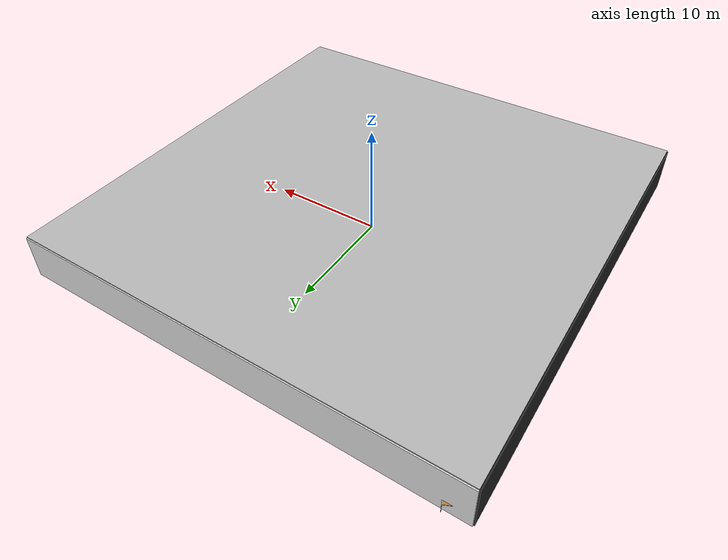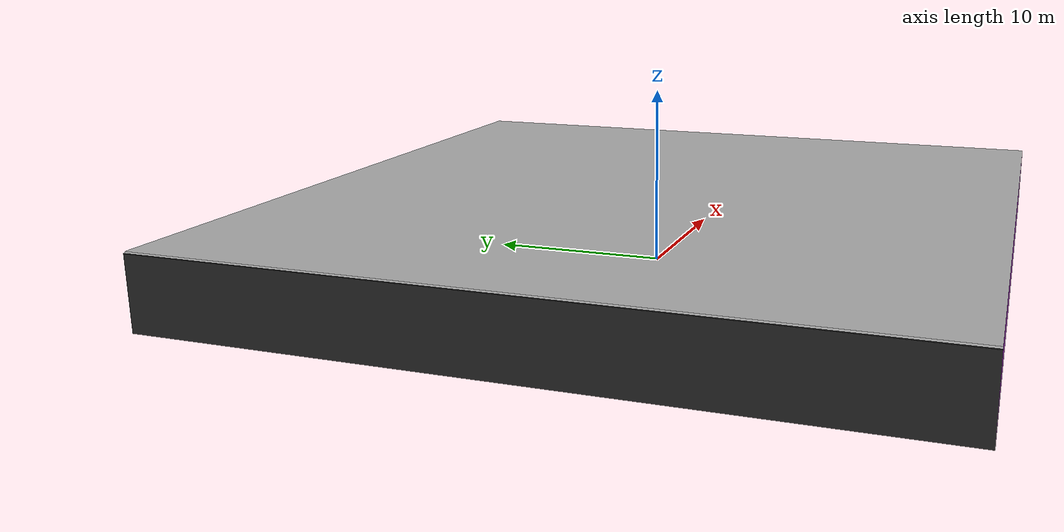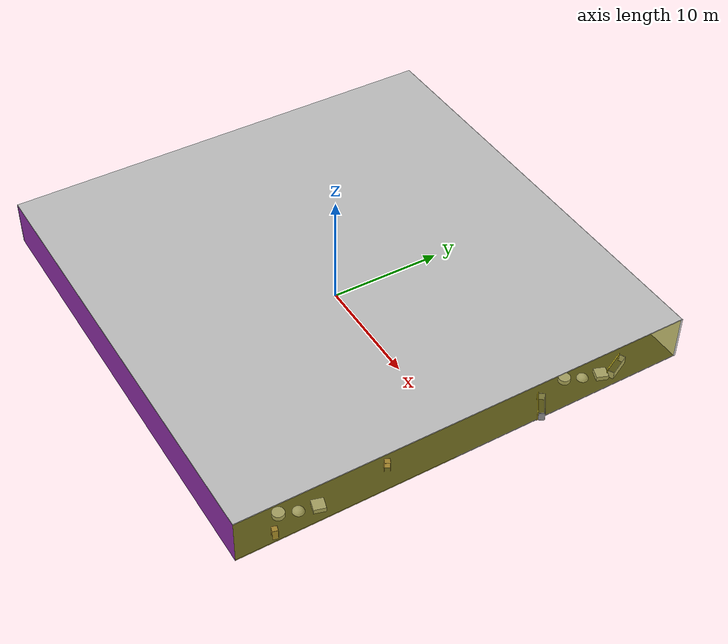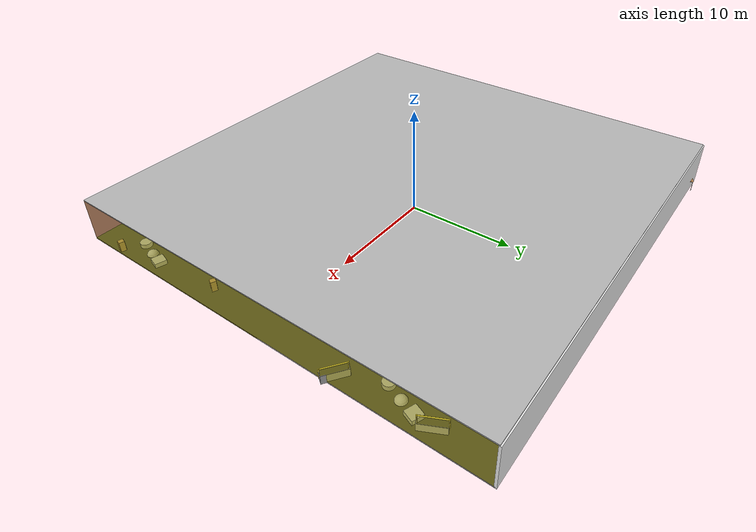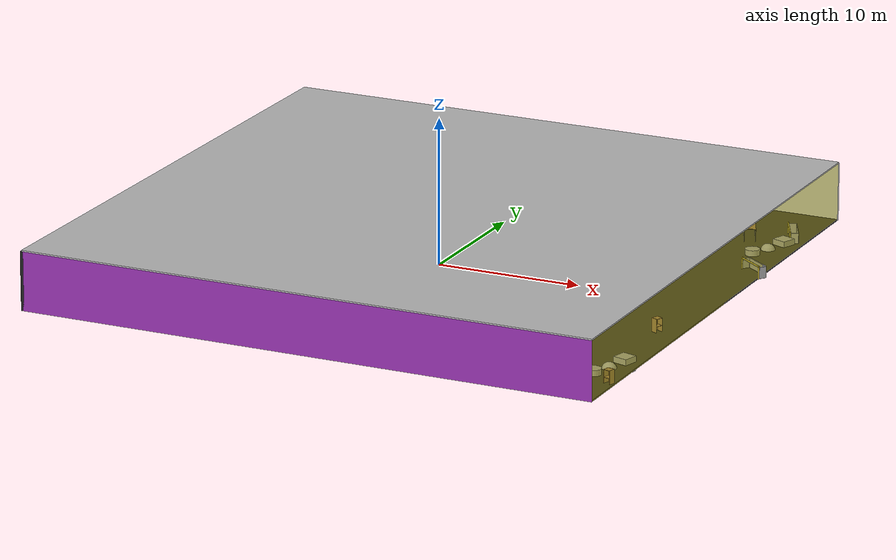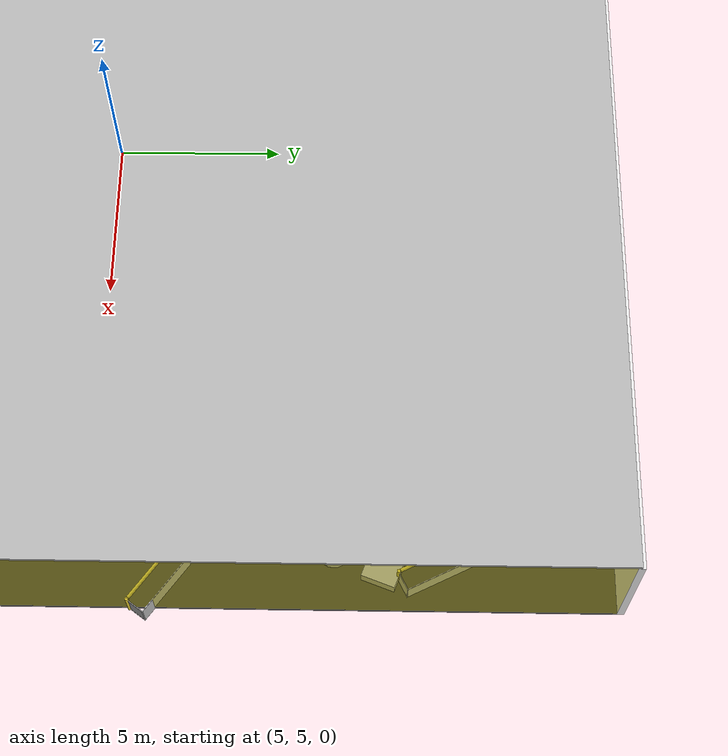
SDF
<sdf version="1.4">
 <world name="default">
  <physics type="ode">
   <max_step_size>0.001</max_step_size>
   <real_time_factor>1</real_time_factor>
   <real_time_update_rate>1000</real_time_update_rate>
   <gravity>0 0 -9.8</gravity>
  </physics>
  <scene><ambient>0.4 0.4 0.4 1</ambient><background>0.7 0.7 0.7 1</background><shadows>1</shadows></scene>
  <model name="Surrounding">
   <static>1</static>
   <link name="Ceiling">
    <collision name="Ceiling_Collision"><geometry><box><size>40 40 0.1</size></box></geometry></collision>
    <visual name="Ceiling_Visual">
     <geometry><box><size>40 40 0.1</size></box></geometry>
     <material>
      <script><uri>file://media/materials/scripts/gazebo.material</uri><name>Gazebo/LightOn</name></script>
     </material>
    </visual>
    <pose>0 0 4.05 0 0 0</pose>
   </link>
   <link name="Wall_South">
    <collision name="Wall_South_Collision">
     <geometry><box><size>40 0 4</size></box></geometry>
     <pose>0 0 2 0 -0 0</pose>
    </collision>
    <visual name="Wall_South_Visual">
     <pose>0 0 2 0 -0 0</pose>
     <geometry><box><size>40 0 4</size></box></geometry>
     <material>
      <script><uri>file://media/materials/scripts/gazebo.material</uri><name>Gazebo/PurpleGlow</name></script>
     </material>
    </visual>
    <velocity_decay><linear>0</linear><angular>0</angular></velocity_decay>
    <pose>0 -20 0 0 -0 0</pose>
   </link>
   <link name="Wall_East">
    <collision name="Wall_21_Collision">
     <geometry><box><size>40 0 4</size></box></geometry>
     <pose>0 0 2 0 -0 0</pose>
    </collision>
    <visual name="Wall_21_Visual">
     <pose>0 0 2 0 -0 0</pose>
     <geometry><box><size>40 0 4</size></box></geometry>
     <material>
      <script>
       <uri>file://media/materials/scripts/gazebo.material</uri>
       <name>Gazebo/YellowTransparent</name>
      </script>
     </material>
    </visual>
    <velocity_decay><linear>0</linear><angular>0</angular></velocity_decay>
    <pose>20 0 0 0 -0 1.5708</pose>
   </link>
   <link name="Wall_North">
    <collision name="Wall_22_Collision">
     <geometry><box><size>40 0.2 4</size></box></geometry>
     <pose>0 0 2 0 -0 0</pose>
    </collision>
    <visual name="Wall_22_Visual">
     <pose>0 0 2 0 -0 0</pose>
     <geometry><box><size>40 0.2 4</size></box></geometry>
     <material>
      <script><uri>file://media/materials/scripts/gazebo.material</uri><name>Gazebo/WhiteGlow</name></script>
     </material>
    </visual>
    <velocity_decay><linear>0</linear><angular>0</angular></velocity_decay>
    <pose>0 20 0 0 -0 0</pose>
   </link>
   <link name="Wall_West">
    <collision name="Wall_23_Collision">
     <geometry><box><size>40 0.2 4</size></box></geometry>
     <pose>0 0 2 0 -0 0</pose>
    </collision>
    <visual name="Wall_23_Visual">
     <pose>0 0 2 0 -0 0</pose>
     <geometry><box><size>40 0.2 4</size></box></geometry>
     <material>
      <script><uri>file://media/materials/scripts/gazebo.material</uri><name>Gazebo/FlatBlack</name></script>
     </material>
    </visual>
    <velocity_decay><linear>0</linear><angular>0</angular></velocity_decay>
    <pose>-20 0 0 0 0 -1.5708</pose>
   </link>
   <link name="Ground_link">
    <collision name="collision">
     <pose>0 0 .05 0 -0 0</pose>
     <geometry><box><size>40 40 0.1</size></box></geometry>
    </collision>
    <visual name="visual">
     <pose>0 0 .05 0 -0 0</pose>
     <geometry><box><size>40 40 0.1</size></box></geometry>
     <material>
      <script><uri>file://media/materials/scripts/gazebo.material</uri><name>Gazebo/FlatBlack</name></script>
     </material>
    </visual>
   </link>
   <static>1</static>
  </model>
  <spherical_coordinates>
   <surface_model>EARTH_WGS84</surface_model>
   <latitude_deg>0</latitude_deg>
   <longitude_deg>0</longitude_deg>
   <elevation>0</elevation>
   <heading_deg>0</heading_deg>
  </spherical_coordinates>
  <light name="lightball_0" type="diffuse">
   <diffuse>0.8 0.8 0.8 1</diffuse>
   <specular>0.2 0.2 0.2 1</specular>
   <attenuation>
    <range>100</range>
    <constant>0.7</constant>
    <linear>0.01</linear>
    <quadratic>0.001</quadratic>
   </attenuation>
   <direction>-0.5 0.1 -0.9</direction>
   <pose>16.653740459 -18.8333103449 1.40176997761 0 0 0</pose>
  </light>
  <light name="lightball_1" type="diffuse">
   <diffuse>0.8 0.8 0.8 1</diffuse>
   <specular>0.2 0.2 0.2 1</specular>
   <attenuation>
    <range>100</range>
    <constant>0.7</constant>
    <linear>0.01</linear>
    <quadratic>0.001</quadratic>
   </attenuation>
   <direction>-0.5 0.1 -0.9</direction>
   <pose>-19.3544927912 -9.27481974929 0.92242195323 0 0 0</pose>
  </light>
  <light name="lightball_2" type="diffuse">
   <diffuse>0.8 0.8 0.8 1</diffuse>
   <specular>0.2 0.2 0.2 1</specular>
   <attenuation>
    <range>100</range>
    <constant>0.7</constant>
    <linear>0.01</linear>
    <quadratic>0.001</quadratic>
   </attenuation>
   <direction>-0.5 0.1 -0.9</direction>
   <pose>-7.89734342217 18.6672067884 1.34808365065 0 0 0</pose>
  </light>
  <light name="lightball_3" type="diffuse">
   <diffuse>0.8 0.8 0.8 1</diffuse>
   <specular>0.2 0.2 0.2 1</specular>
   <attenuation>
    <range>100</range>
    <constant>0.7</constant>
    <linear>0.01</linear>
    <quadratic>0.001</quadratic>
   </attenuation>
   <direction>-0.5 0.1 -0.9</direction>
   <pose>-16.1527318909 -10.2690832323 2.27273684176 0 0 0</pose>
  </light>
  <light name="lightball_4" type="diffuse">
   <diffuse>0.8 0.8 0.8 1</diffuse>
   <specular>0.2 0.2 0.2 1</specular>
   <attenuation>
    <range>100</range>
    <constant>0.7</constant>
    <linear>0.01</linear>
    <quadratic>0.001</quadratic>
   </attenuation>
   <direction>-0.5 0.1 -0.9</direction>
   <pose>12.9182635345 -0.435605254172 2.29087408469 0 0 0</pose>
  </light>
  <light name="lightball_5" type="diffuse">
   <diffuse>0.8 0.8 0.8 1</diffuse>
   <specular>0.2 0.2 0.2 1</specular>
   <attenuation>
    <range>100</range>
    <constant>0.7</constant>
    <linear>0.01</linear>
    <quadratic>0.001</quadratic>
   </attenuation>
   <direction>-0.5 0.1 -0.9</direction>
   <pose>-3.55499296508 -2.25145157574 3.26230845346 0 0 0</pose>
  </light>
  <light name="lightball_6" type="diffuse">
   <diffuse>0.8 0.8 0.8 1</diffuse>
   <specular>0.2 0.2 0.2 1</specular>
   <attenuation>
    <range>100</range>
    <constant>0.7</constant>
    <linear>0.01</linear>
    <quadratic>0.001</quadratic>
   </attenuation>
   <direction>-0.5 0.1 -0.9</direction>
   <pose>15.3550148925 8.65528143123 2.46871881614 0 0 0</pose>
  </light>
  <include>
   <uri>model://construction_cone</uri>
   <pose>-17.4015797901 9.68293926827 0 0 0 3.11391428756</pose>
  </include>
  <include><uri>model://table</uri><pose>-18.0319135364 19.5371846507 0 0 0 1.99001848298</pose></include>
  <include><uri>model://cabinet</uri><pose>-14.4496539364 -14.0322142475 0 0 0 2.79714585365</pose></include>
  <include><uri>model://table</uri><pose>-15.1381121478 -10.5260306106 0 0 0 2.74685311131</pose></include>
  <include>
   <uri>model://textured_shapes</uri>
   <pose>-15.3871589678 0.437236915069 0 0 0 0.735297833513</pose>
  </include>
  <include>
   <uri>model://construction_cone</uri>
   <pose>-10.3152629295 -1.96418553949 0 0 0 0.737214014679</pose>
  </include>
  <include><uri>model://table</uri><pose>-11.0426168108 1.25563395626 0 0 0 1.11287237737</pose></include>
  <include><uri>model://table</uri><pose>-11.8912035427 8.36644088633 0 0 0 1.43172013293</pose></include>
  <include><uri>model://cabinet</uri><pose>-7.45158416923 2.57951414028 0 0 0 2.69162805</pose></include>
  <include>
   <uri>model://construction_cone</uri>
   <pose>-8.40402989755 16.5744958056 0 0 0 0.664037918166</pose>
  </include>
  <include>
   <uri>model://construction_cone</uri>
   <pose>-8.91043237881 18.318967475 0 0 0 0.310511101618</pose>
  </include>
  <include><uri>model://cabinet</uri><pose>-5.74586496587 -16.7713666358 0 0 0 2.56520035928</pose></include>
  <include>
   <uri>model://textured_shapes</uri>
   <pose>-2.20925457726 2.47054243141 0 0 0 1.92638663148</pose>
  </include>
  <include>
   <uri>model://construction_cone</uri>
   <pose>-2.7829270819 15.7487844287 0 0 0 0.0602497050983</pose>
  </include>
  <include>
   <uri>model://robocup_3Dsim_goal</uri>
   <pose>0.436614440085 9.91507274815 0 0 0 1.50093596826</pose>
  </include>
  <include><uri>model://table</uri><pose>2.93686341517 -8.59640082106 0 0 0 1.41395957777</pose></include>
  <include><uri>model://cabinet</uri><pose>6.82224657953 -4.37331113113 0 0 0 2.50394235126</pose></include>
  <include><uri>model://cabinet</uri><pose>7.53584640895 9.56630772813 0 0 0 2.51005064862</pose></include>
  <include><uri>model://cabinet</uri><pose>8.45804052865 -8.18083830363 0 0 0 2.63248779684</pose></include>
  <include><uri>model://cabinet</uri><pose>8.55145245983 2.59728638218 0 0 0 0.364718812264</pose></include>
  <include>
   <uri>model://robocup_3Dsim_goal</uri>
   <pose>12.393364481 11.9089392204 0 0 0 2.19798596461</pose>
  </include>
  <include>
   <uri>model://construction_cone</uri>
   <pose>12.1781871183 19.0210816561 0 0 0 2.02410969522</pose>
  </include>
  <include><uri>model://table</uri><pose>16.3071218776 13.5498236487 0 0 0 1.99600403477</pose></include>
  <include><uri>model://cabinet</uri><pose>19.6262075808 -16.6102172295 0 0 0 1.29741527923</pose></include>
  <include>
   <uri>model://textured_shapes</uri>
   <pose>18.4992719739 -14.0270900827 0 0 0 2.86172596206</pose>
  </include>
  <include><uri>model://cabinet</uri><pose>18.370361127 -6.34691712209 0 0 0 2.68428782915</pose></include>
  <include>
   <uri>model://robocup_3Dsim_goal</uri>
   <pose>19.165338253 6.93423331442 0 0 0 0.938606286938</pose>
  </include>
  <include>
   <uri>model://textured_shapes</uri>
   <pose>18.2966212683 11.9911347653 0 0 0 2.78350093755</pose>
  </include>
  <include>
   <uri>model://robocup_3Dsim_goal</uri>
   <pose>18.6444252151 14.7477145807 0 0 0 0.45649039246</pose>
  </include>
 </world>
</sdf>

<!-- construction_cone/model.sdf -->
<sdf version="1.5">
  <model name="Construction Cone">
    <link name="link">
      <collision name="collision">
        <geometry>
          <mesh>
            <scale>10 10 10</scale>
            <uri>file://isr-testbed/construction_cone/meshes/construction_cone.dae</uri>
          </mesh>
        </geometry>
      </collision>
      <visual name="visual">
        <geometry>
          <mesh>
            <scale>10 10 10</scale>
            <uri>file://isr-testbed/construction_cone/meshes/construction_cone.dae</uri>
          </mesh>
        </geometry>
      </visual>
    </link>
  </model>
</sdf>

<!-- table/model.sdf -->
<sdf version="1.5">
  <model name="table">
    <static>true</static>
    <link name="link">
      <collision name="surface">
        <pose>0 0 1.0 0 0 0</pose>
        <geometry>
          <box>
            <size>1.5 0.8 0.03</size>
          </box>
        </geometry>
        <surface>
          <friction>
            <ode>
              <mu>0.6</mu>
              <mu2>0.6</mu2>
            </ode>
          </friction>
        </surface>
      </collision>
      <visual name="visual1">
        <pose>0 0 1.0 0 0 0</pose>
        <geometry>
          <box>
            <size>1.5 0.8 0.03</size>
          </box>
        </geometry>
        <material>
          <script>
            <uri>model://media/materials/scripts/gazebo.material</uri>
            <name>Gazebo/Wood</name>
          </script>
        </material>
      </visual>
      <collision name="front_left_leg">
        <pose>0.68 0.38 0.5 0 0 0</pose>
        <geometry>
          <cylinder>
            <radius>0.02</radius>
            <length>1.0</length>
          </cylinder>
        </geometry>
      </collision>
      <visual name="front_left_leg">
        <pose>0.68 0.38 0.5 0 0 0</pose>
        <geometry>
          <cylinder>
            <radius>0.02</radius>
            <length>1.0</length>
          </cylinder>
        </geometry>
        <material>
          <script>
            <uri>model://media/materials/scripts/gazebo.material</uri>
            <name>Gazebo/Grey</name>
          </script>
        </material>
      </visual>
      <collision name="front_right_leg">
        <pose>0.68 -0.38 0.5 0 0 0</pose>
        <geometry>
          <cylinder>
            <radius>0.02</radius>
            <length>1.0</length>
          </cylinder>
        </geometry>
      </collision>
      <visual name="front_right_leg">
        <pose>0.68 -0.38 0.5 0 0 0</pose>
        <geometry>
          <cylinder>
            <radius>0.02</radius>
            <length>1.0</length>
          </cylinder>
        </geometry>
        <material>
          <script>
            <uri>model://media/materials/scripts/gazebo.material</uri>
            <name>Gazebo/Grey</name>
          </script>
        </material>
      </visual>
      <collision name="back_right_leg">
        <pose>-0.68 -0.38 0.5 0 0 0</pose>
        <geometry>
          <cylinder>
            <radius>0.02</radius>
            <length>1.0</length>
          </cylinder>
        </geometry>
      </collision>
      <visual name="back_right_leg">
        <pose>-0.68 -0.38 0.5 0 0 0</pose>
        <geometry>
          <cylinder>
            <radius>0.02</radius>
            <length>1.0</length>
          </cylinder>
        </geometry>
        <material>
          <script>
            <uri>model://media/materials/scripts/gazebo.material</uri>
            <name>Gazebo/Grey</name>
          </script>
        </material>
      </visual>
      <collision name="back_left_leg">
        <pose>-0.68 0.38 0.5 0 0 0</pose>
        <geometry>
          <cylinder>
            <radius>0.02</radius>
            <length>1.0</length>
          </cylinder>
        </geometry>
      </collision>
      <visual name="back_left_leg">
        <pose>-0.68 0.38 0.5 0 0 0</pose>
        <geometry>
          <cylinder>
            <radius>0.02</radius>
            <length>1.0</length>
          </cylinder>
        </geometry>
        <material>
          <script>
            <uri>model://media/materials/scripts/gazebo.material</uri>
            <name>Gazebo/Grey</name>
          </script>
        </material>
      </visual>
    </link>
  </model>
</sdf>

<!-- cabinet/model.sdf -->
<sdf version="1.5">
  <model name="cabinet">
    <static>true</static>
    <link name="cabinet_bottom_plate">
      <inertial>
        <pose>0 0 -1 0 0 0</pose>
        <inertia>
          <ixx>2.050000</ixx>
          <ixy>0</ixy>
          <ixz>0</ixz>
          <iyy>2.050000</iyy>
          <iyz>0</iyz>
          <izz>2.050000</izz>
        </inertia>
        <mass>25.000000</mass>
      </inertial>
      <collision name="cabinet_bottom_plate_geom">
        <pose>0 0 0.010000 0 0 0</pose>
        <geometry>
          <box>
            <size>0.450000 0.450000 0.020000</size>
          </box>
        </geometry>
      </collision>
      <visual name="cabinet_bottom_plate_geom_visual">
        <pose>0 0 0.010000 0 0 0</pose>
        <geometry>
          <box>
            <size>0.450000 0.450000 0.020000</size>
          </box>
        </geometry>
        <material>
          <script>
            <uri>model://media/materials/scripts/gazebo.material</uri>
            <name>Gazebo/Wood</name>
          </script>
        </material>
      </visual>
      <collision name="cabinet_bottom_plate_geom_cabinet_back_plate">
        <pose>0.235000 0 0.510000 0 0 0</pose>
        <geometry>
          <box>
            <size>0.020000 0.450000 1.020000</size>
          </box>
        </geometry>
      </collision>
      <visual name="cabinet_bottom_plate_geom_cabinet_back_plate_visual">
        <pose>0.235000 0 0.510000 0 0 0</pose>
        <geometry>
          <box>
            <size>0.020000 0.450000 1.020000</size>
          </box>
        </geometry>
        <material>
          <script>
            <uri>model://media/materials/scripts/gazebo.material</uri>
            <name>Gazebo/Wood</name>
          </script>
        </material>
      </visual>
      <collision name="cabinet_bottom_plate_geom_cabinet_left_plate">
        <pose>0 0.235000 0.510000 0 0 0</pose>
        <geometry>
          <box>
            <size>0.450000 0.020000 1.020000</size>
          </box>
        </geometry>
      </collision>
      <visual name="cabinet_bottom_plate_geom_cabinet_left_plate_visual">
        <pose>0 0.235000 0.510000 0 0 0</pose>
        <geometry>
          <box>
            <size>0.450000 0.020000 1.020000</size>
          </box>
        </geometry>
        <material>
          <script>
            <uri>model://media/materials/scripts/gazebo.material</uri>
            <name>Gazebo/Wood</name>
          </script>
        </material>
      </visual>
      <collision name="cabinet_bottom_plate_geom_cabinet_middle_plate">
        <pose>0 0 0.510000 0 0 0</pose>
        <geometry>
          <box>
            <size>0.450000 0.450000 0.020000</size>
          </box>
        </geometry>
      </collision>
      <visual name="cabinet_bottom_plate_geom_cabinet_middle_plate_visual">
        <pose>0 0 0.510000 0 0 0</pose>
        <geometry>
          <box>
            <size>0.450000 0.450000 0.020000</size>
          </box>
        </geometry>
        <material>
          <script>
            <uri>model://media/materials/scripts/gazebo.material</uri>
            <name>Gazebo/Wood</name>
          </script>
        </material>
      </visual>
      <collision name="cabinet_bottom_plate_geom_cabinet_right_plate">
        <pose>0 -0.235000 0.510000 0 0 0</pose>
        <geometry>
          <box>
            <size>0.450000 0.020000 1.020000</size>
          </box>
        </geometry>
      </collision>
      <visual name="cabinet_bottom_plate_geom_cabinet_right_plate_visual">
        <pose>0 -0.235000 0.510000 0 0 0</pose>
        <geometry>
          <box>
            <size>0.450000 0.020000 1.020000</size>
          </box>
        </geometry>
        <material>
          <script>
            <uri>model://media/materials/scripts/gazebo.material</uri>
            <name>Gazebo/Wood</name>
          </script>
        </material>
      </visual>
      <collision name="cabinet_bottom_plate_geom_cabinet_top_plate">
        <pose>0 0 1.010000 0 0 0</pose>
        <geometry>
          <box>
            <size>0.450000 0.450000 0.020000</size>
          </box>
        </geometry>
      </collision>
      <visual name="cabinet_bottom_plate_geom_cabinet_top_plate_visual">
        <pose>0 0 1.010000 0 0 0</pose>
        <geometry>
          <box>
            <size>0.450000 0.450000 0.020000</size>
          </box>
        </geometry>
        <material>
          <script>
            <uri>model://media/materials/scripts/gazebo.material</uri>
            <name>Gazebo/Wood</name>
          </script>
        </material>
      </visual>
    </link>
  </model>
</sdf>

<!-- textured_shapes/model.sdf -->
<sdf version="1.6">
  <model name="textured_shapes">
    <pose>0 0 0.5 0 0 0</pose>
    <link name="box">
      <pose>0 -1.5 0 0 0 0</pose>
      <collision name="collision">
        <geometry>
          <box>
            <size>1 1 1</size>
          </box>
        </geometry>
      </collision>
      <visual name="visual">
        <geometry>
          <box>
            <size>1 1 1</size>
          </box>
        </geometry>
        <material>
          <script>
            <uri>model://../model_source/models/textured_shapes/materials/scripts</uri>
            <uri>model://../model_source/models/textured_shapes/materials/textures</uri>
            <name>TexturedShape/Squares</name>
          </script>
        </material>
      </visual>
    </link>
    <link name="sphere">
      <collision name="collision">
        <geometry>
          <sphere>
            <radius>0.5</radius>
          </sphere>
        </geometry>
      </collision>
      <visual name="visual">
        <geometry>
          <sphere>
            <radius>0.5</radius>
          </sphere>
        </geometry>
        <material>
          <script>
            <uri>model://../model_source/models/textured_shapes/materials/scripts</uri>
            <uri>model://../model_source/models/textured_shapes/materials/textures</uri>
            <name>TexturedShape/Squares</name>
          </script>
        </material>
      </visual>
    </link>
    <link name="cylinder">
      <pose>0 1.5 0 0 0 0</pose>
      <collision name="collision">
        <geometry>
          <cylinder>
            <radius>0.5</radius>
            <length>1</length>
          </cylinder>
        </geometry>
      </collision>
      <visual name="visual">
        <geometry>
          <cylinder>
            <radius>0.5</radius>
            <length>1</length>
          </cylinder>
        </geometry>
        <material>
          <script>
            <uri>model://../model_source/models/textured_shapes/materials/scripts</uri>
            <uri>model://../model_source/models/textured_shapes/materials/textures</uri>
            <name>TexturedShape/Squares</name>
          </script>
        </material>
      </visual>
    </link>
  </model>
</sdf>

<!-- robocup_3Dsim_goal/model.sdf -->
<sdf version="1.5">
  <model name="robocup_3d_goal">
    <static>true</static>
    <link name="left_post">
      <pose>0 1.05 0.45 0 0 0</pose>
      <collision name="collision">
        <geometry>
          <cylinder>
            <radius>0.05</radius>
            <length>0.9</length>
          </cylinder>
        </geometry>
      </collision>
      <visual name="visual">
        <geometry>
          <cylinder>
            <radius>0.05</radius>
            <length>0.9</length>
          </cylinder>
        </geometry>
        <material>
          <script>
            <uri>file://media/materials/scripts/gazebo.material</uri>
            <name>Gazebo/ZincYellow</name>
          </script>
        </material>
      </visual>
    </link>
    <link name="left_support_horiz_lower">
      <pose>0.30 1.05 0.01 0 0 0</pose>
      <collision name="collision">
        <geometry>
          <box>
            <size>0.50 0.02 0.02</size>
          </box>
        </geometry>
      </collision>
      <visual name="visual">
        <geometry>
          <box>
            <size>0.50 0.02 0.02</size>
          </box>
        </geometry>
        <material>
          <script>
            <uri>file://media/materials/scripts/gazebo.material</uri>
            <name>Gazebo/White</name>
          </script>
        </material>
      </visual>
    </link>
    <link name="left_support_horiz_upper">
      <pose>0.30 1.05 0.79 0 0 0</pose>
      <collision name="collision">
        <geometry>
          <box>
            <size>0.50 0.02 0.02</size>
          </box>
        </geometry>
      </collision>
      <visual name="visual">
        <geometry>
          <box>
            <size>0.50 0.02 0.02</size>
          </box>
        </geometry>
        <material>
          <script>
            <uri>file://media/materials/scripts/gazebo.material</uri>
            <name>Gazebo/White</name>
          </script>
        </material>
      </visual>
    </link>
    <link name="left_support_vertical">
      <pose>0.56 1.05 0.4 0 1.5708 0</pose>
      <collision name="collision">
        <geometry>
          <box>
            <size>0.80 0.02 0.02</size>
          </box>
        </geometry>
      </collision>
      <visual name="visual">
        <geometry>
          <box>
            <size>0.80 0.02 0.02</size>
          </box>
        </geometry>
        <material>
          <script>
            <uri>file://media/materials/scripts/gazebo.material</uri>
            <name>Gazebo/White</name>
          </script>
        </material>
      </visual>
    </link>
    <link name="right_support_horiz_lower">
      <pose>0.30 -1.05 0.01 0 0 0</pose>
      <collision name="collision">
        <geometry>
          <box>
            <size>0.50 0.02 0.02</size>
          </box>
        </geometry>
      </collision>
      <visual name="visual">
        <geometry>
          <box>
            <size>0.50 0.02 0.02</size>
          </box>
        </geometry>
        <material>
          <script>
            <uri>file://media/materials/scripts/gazebo.material</uri>
            <name>Gazebo/White</name>
          </script>
        </material>
      </visual>
    </link>
    <link name="right_support_horiz_upper">
      <pose>0.30 -1.05 0.79 0 0 0</pose>
      <collision name="collision">
        <geometry>
          <box>
            <size>0.50 0.02 0.02</size>
          </box>
        </geometry>
      </collision>
      <visual name="visual">
        <geometry>
          <box>
            <size>0.50 0.02 0.02</size>
          </box>
        </geometry>
        <material>
          <script>
            <uri>file://media/materials/scripts/gazebo.material</uri>
            <name>Gazebo/White</name>
          </script>
        </material>
      </visual>
    </link>
    <link name="right_support_vertical">
      <pose>0.56 -1.05 0.4 0 1.5708 0</pose>
      <collision name="collision">
        <geometry>
          <box>
            <size>0.80 0.02 0.02</size>
          </box>
        </geometry>
      </collision>
      <visual name="visual">
        <geometry>
          <box>
            <size>0.80 0.02 0.02</size>
          </box>
        </geometry>
        <material>
          <script>
            <uri>file://media/materials/scripts/gazebo.material</uri>
            <name>Gazebo/White</name>
          </script>
        </material>
      </visual>
    </link>
    <link name="center_support_horiz_lower">
      <pose>0.56 0 0.01 0 1.5708 0</pose>
      <collision name="collision">
        <geometry>
          <box>
            <size>0.02 2.08 0.02</size>
          </box>
        </geometry>
      </collision>
      <visual name="visual">
        <geometry>
          <box>
            <size>0.02 2.08 0.02</size>
          </box>
        </geometry>
        <material>
          <script>
            <uri>file://media/materials/scripts/gazebo.material</uri>
            <name>Gazebo/White</name>
          </script>
        </material>
      </visual>
    </link>
    <link name="center_support_horiz_upper">
      <pose>0.56 0 0.79 0 1.5708 0</pose>
      <collision name="collision">
        <geometry>
          <box>
            <size>0.02 2.08 0.02</size>
          </box>
        </geometry>
      </collision>
      <visual name="visual">
        <geometry>
          <box>
            <size>0.02 2.08 0.02</size>
          </box>
        </geometry>
        <material>
          <script>
            <uri>file://media/materials/scripts/gazebo.material</uri>
            <name>Gazebo/White</name>
          </script>
        </material>
      </visual>
    </link>
    <link name="right_post">
      <pose>0 -1.05 0.45 0 0 0</pose>
      <collision name="collision">
        <geometry>
          <cylinder>
            <radius>0.05</radius>
            <length>0.9</length>
          </cylinder>
        </geometry>
      </collision>
      <visual name="visual">
        <geometry>
          <cylinder>
            <radius>0.05</radius>
            <length>0.9</length>
          </cylinder>
        </geometry>
        <material>
          <script>
            <uri>file://media/materials/scripts/gazebo.material</uri>
            <name>Gazebo/ZincYellow</name>
          </script>
        </material>
      </visual>
    </link>
    <link name="crossbar">
      <pose>0 0 0.85 1.57 1.57 0</pose>
      <collision name="collision">
        <geometry>
          <cylinder>
            <radius>0.05</radius>
            <length>2.0</length>
          </cylinder>
        </geometry>
      </collision>
      <visual name="visual">
        <geometry>
          <cylinder>
            <radius>0.05</radius>
            <length>2.0</length>
          </cylinder>
        </geometry>
        <material>
          <script>
            <uri>file://media/materials/scripts/gazebo.material</uri>
            <name>Gazebo/ZincYellow</name>
          </script>
        </material>
      </visual>
    </link>
    <link name="center_net">
      <pose>0.56 0 0.40 0 0 0</pose>
      <collision name="collision">
        <geometry>
          <box>
            <size>0.01 2.1 0.80</size>
          </box>
        </geometry>
      </collision>
      <visual name="visual">
        <geometry>
          <box>
            <size>0.01 2.1 0.80</size>
          </box>
        </geometry>
        <material>
          <script>
            <uri>model://../model_source/models/robocup09_spl_field/materials/scripts/</uri>
            <uri>model://../model_source/models/robocup09_spl_field/materials/textures/</uri>
            <name>RoboCup/Net</name>
          </script>
        </material>
      </visual>
    </link>
    <link name="left_net">
      <pose>0.30 1.05 0.40 0 0 0</pose>
      <collision name="collision">
        <geometry>
          <box>
            <size>0.50 0.01 0.76</size>
          </box>
        </geometry>
      </collision>
      <visual name="visual">
        <geometry>
          <box>
            <size>0.50 0.01 0.76</size>
          </box>
        </geometry>
        <material>
          <script>
            <uri>model://../model_source/models/robocup09_spl_field/materials/scripts/</uri>
            <uri>model://../model_source/models/robocup09_spl_field/materials/textures/</uri>
            <name>RoboCup/Net</name>
          </script>
        </material>
      </visual>
    </link>
    <link name="right_net">
      <pose>0.30 -1.05 0.40 0 0 0</pose>
      <collision name="collision">
        <geometry>
          <box>
            <size>0.50 0.01 0.76</size>
          </box>
        </geometry>
      </collision>
      <visual name="visual">
        <geometry>
          <box>
            <size>0.50 0.01 0.76</size>
          </box>
        </geometry>
        <material>
          <script>
            <uri>model://../model_source/models/robocup09_spl_field/materials/scripts/</uri>
            <uri>model://../model_source/models/robocup09_spl_field/materials/textures/</uri>
            <name>RoboCup/Net</name>
          </script>
        </material>
      </visual>
    </link>
  </model>
</sdf>
